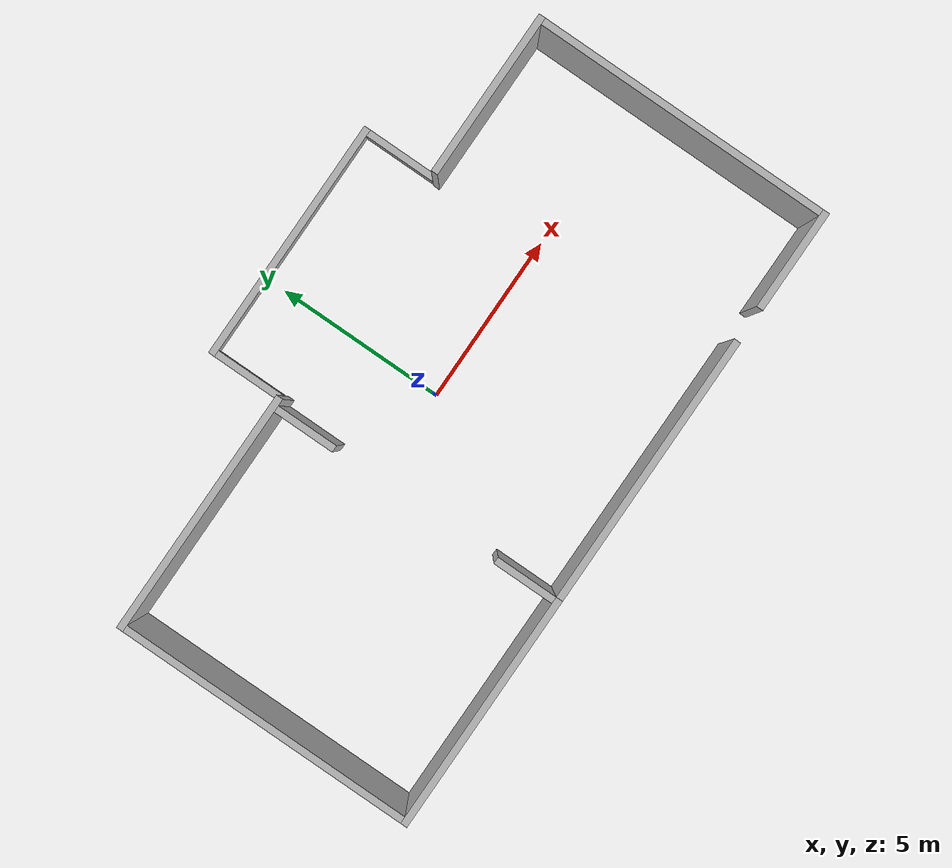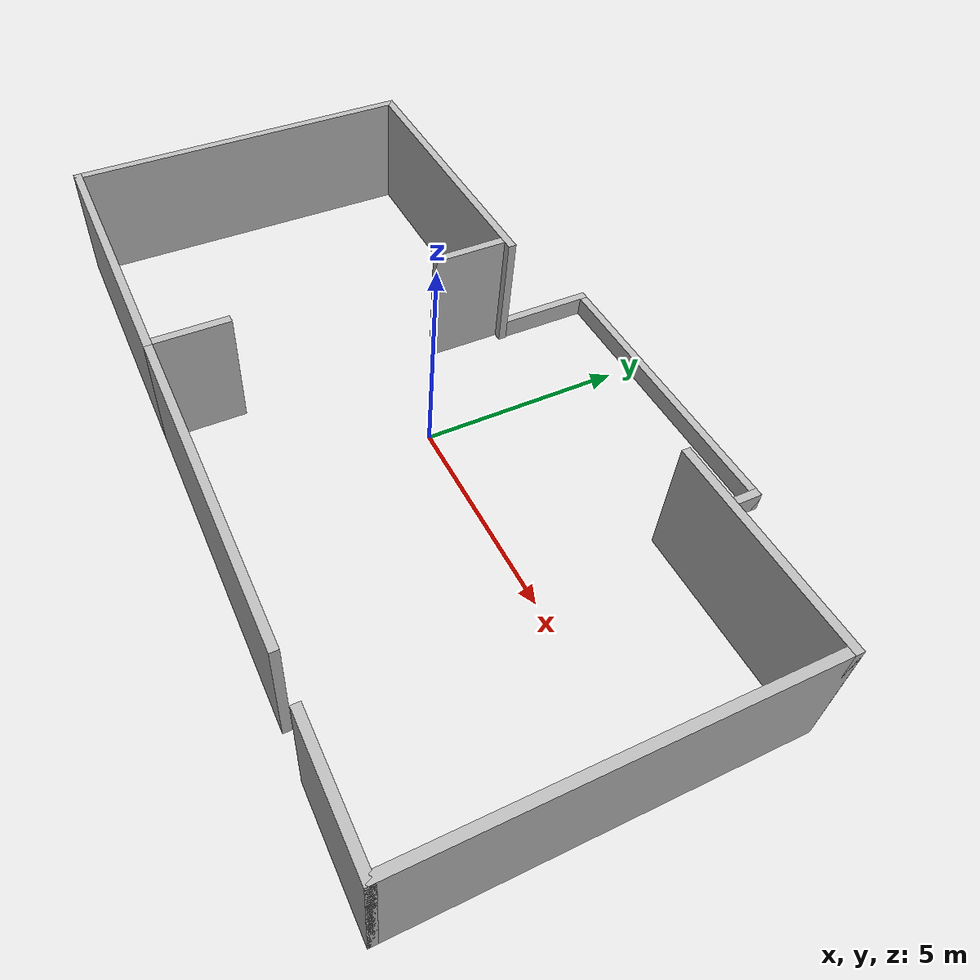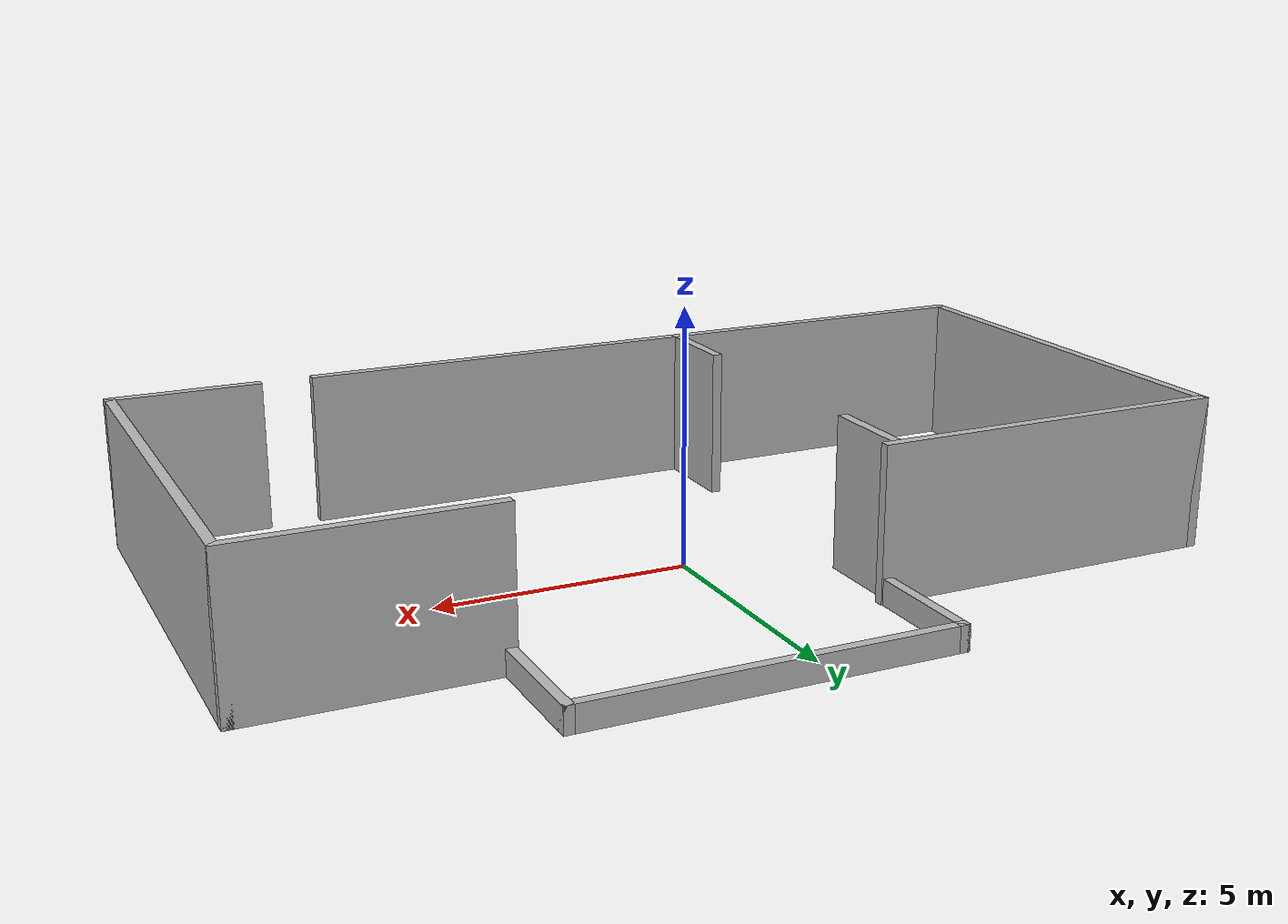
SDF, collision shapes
<?xml version='1.0' encoding='utf-8'?>
<sdf version="1.6">
  <model name="aws_robomaker_residential_HouseWallB_01">
    <link name="link">
      <inertial>
        <mass>1</mass>
      </inertial>
      <collision name="collision_wall_01">
        <pose>-6 -5.6 1.5 0 0 0</pose>
        <geometry>
          <box>
            <size>7 0.2 3</size>
          </box>
        </geometry>
      </collision>
      <collision name="collision_wall_02">
        <pose>1.5 -5.6 1.5 0 0 0</pose>
        <geometry>
          <box>
            <size>8 0.2 3</size>
          </box>
        </geometry>
      </collision>
      <collision name="collision_wall_03">
        <pose>8 -5.6 1.5 0 0 0</pose>
        <geometry>
          <box>
            <size>3 0.2 3</size>
          </box>
        </geometry>
      </collision>
      <collision name="collision_wall_04">
        <pose>-5.9 3.2 1.5 0 0 0</pose>
        <geometry>
          <box>
            <size>7.2 0.2 3</size>
          </box>
        </geometry>
      </collision>
      <collision name="collision_wall_05">
        <pose>7.071 3.2 1.5 0 0 0</pose>
        <geometry>
          <box>
            <size>4.858 0.2 3</size>
          </box>
        </geometry>
      </collision>
      <collision name="collision_wall_06">
        <pose>-9.4 -1.2 1.5 0 0 0</pose>
        <geometry>
          <box>
            <size>0.2 9 3</size>
          </box>
        </geometry>
      </collision>
      <collision name="collision_wall_07">
        <pose>9.4 -1.2 1.5 0 0 0</pose>
        <geometry>
          <box>
            <size>0.2 9 3</size>
          </box>
        </geometry>
      </collision>
      <collision name="collision_wall_08">
        <pose>-2.6 -4.6 1.5 0 0 0</pose>
        <geometry>
          <box>
            <size>0.2 1.8 3</size>
          </box>
        </geometry>
      </collision>
      <collision name="collision_wall_09">
        <pose>-2.6 2.2 1.5 0 0 0</pose>
        <geometry>
          <box>
            <size>0.2 1.8 3</size>
          </box>
        </geometry>
      </collision>
      <collision name="collision_wall_10">
        <pose>1.171 5.6 0.25 0 0 0</pose>
        <geometry>
          <box>
            <size>7.4 0.2 0.5</size>
          </box>
        </geometry>
      </collision>
      <collision name="collision_wall_11">
        <pose>-2.428 4.403 0.25 0 0 0</pose>
        <geometry>
          <box>
            <size>0.202 2.594 0.5</size>
          </box>
        </geometry>
      </collision>
      <collision name="collision_wall_12">
        <pose>4.77 4.403 0.25 0 0 0</pose>
        <geometry>
          <box>
            <size>0.202 2.594 0.5</size>
          </box>
        </geometry>
      </collision>
      <visual name="visual">
        <geometry>
          <mesh>
            <uri>model://aws_robomaker_residential_HouseWallB_01/meshes/aws_HouseWallB_01_visual.DAE</uri>
          </mesh>
        </geometry>
        <meta>
          <layer> 2 </layer>
        </meta>
      </visual>
    </link>
    <static>1</static>
  </model>
</sdf>
